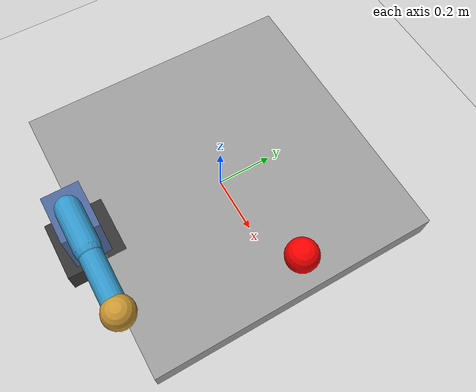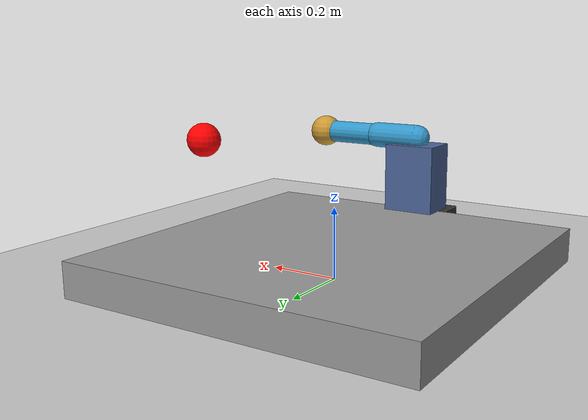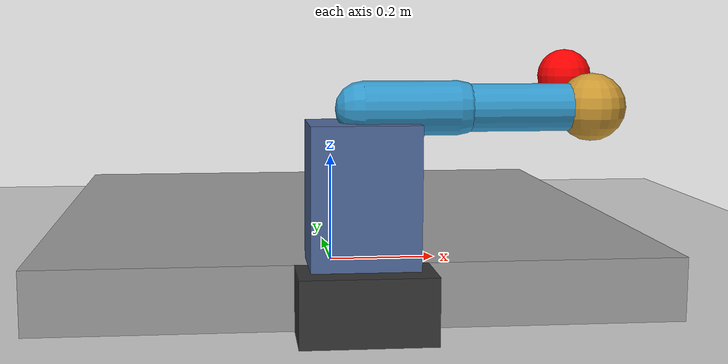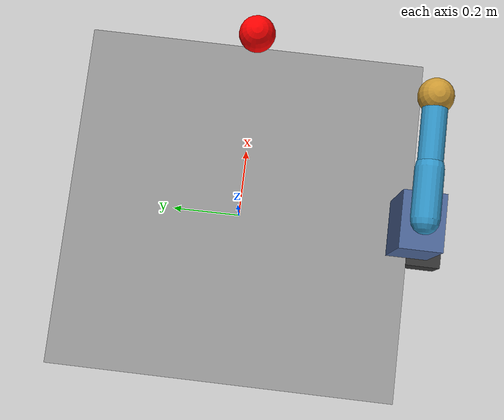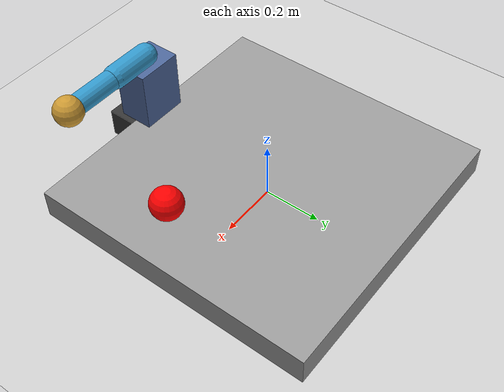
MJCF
<mujoco model="upper_body_follow">
  <compiler angle="radian"/>

  <asset>
    <material name="robot_mat" rgba="0.2 0.5 0.8 1"/>
    <material name="ground_mat" rgba="0.8 0.8 0.8 1"/>
    <material name="target_mat" rgba="1 0 0 1"/>
    <material name="ee_mat" rgba="0 1 0 0.8"/>
  </asset>

  <worldbody>
    <geom name="floor" size="5 5 0.1" type="plane" material="ground_mat"/>
    <camera name="camera_front" pos="0.3 -1.1 0.6" quat="0.5 0.5 0.5 0.5"/>
    <camera name="camera_side" pos="1 0 0.8" quat="0 0 0 1"/>
    <body name="table">
      <geom size="0.5 0.5 0.05" pos="0 0 0.05" type="box" rgba="0.6 0.6 0.6 1"/>
    </body>
    <body name="robot_base" pos="0 -0.5 0.05">
      <joint name="base_x" pos="0 0 0" axis="1 0 0" type="slide" limited="true" range="-0.2 0.2"/>
      <joint name="base_y" pos="0 0 0" axis="0 1 0" type="slide" limited="true" range="-0.2 0.2"/>
      <geom size="0.1 0.1 0.05" type="box" rgba="0.2 0.2 0.2 1"/>
      <body name="torso" pos="0 0 0.1">
        <geom size="0.08 0.06 0.16" type="box" rgba="0.3 0.4 0.6 1"/>
        <body name="shoulder" pos="0 0 0.18">
          <joint name="shoulder_yaw" pos="0 0 0" axis="0 0 1" range="-1.5708 1.5708"/>
          <geom size="0.04 0.07" pos="0.07 0 0" quat="0.707107 0 -0.707107 0" type="capsule" rgba="0.2 0.6 0.8 1"/>
          <body name="upper_arm" pos="0.14 0 0">
            <joint name="elbow_pitch" pos="0 0 0" axis="0 1 0" range="-2.35619 2.35619"/>
            <geom size="0.035 0.1" pos="0.1 0 0" quat="0.707107 0 -0.707107 0" type="capsule" rgba="0.2 0.6 0.8 1"/>
            <body name="forearm" pos="0.2 0 0">
              <geom size="0.05" rgba="0.8 0.6 0.2 1"/>
              <site name="ee" pos="0 0 0" size="0.03" rgba="0 1 0 0.8"/>
            </body>
          </body>
        </body>
      </body>
    </body>
    <body name="target" pos="0.45 0 0.35">
      <geom size="0.05" material="target_mat"/>
      <site name="target_site" pos="0 0 0" size="0.05" rgba="1 0 0 0.4"/>
    </body>
  </worldbody>

  <actuator>
    <general name="act_shoulder_yaw" joint="shoulder_yaw" ctrlrange="-1 1" biastype="affine" gainprm="80" biasprm="0 -80"/>
    <general name="act_elbow_pitch" joint="elbow_pitch" ctrlrange="-1 1" biastype="affine" gainprm="80" biasprm="0 -80"/>
  </actuator>
</mujoco>
